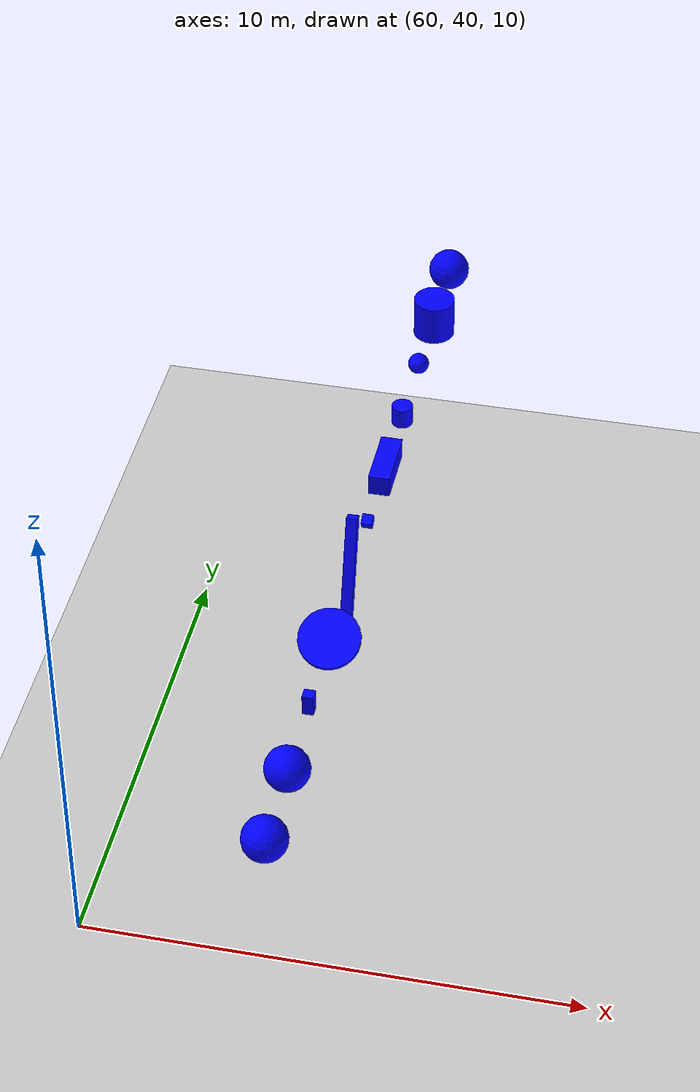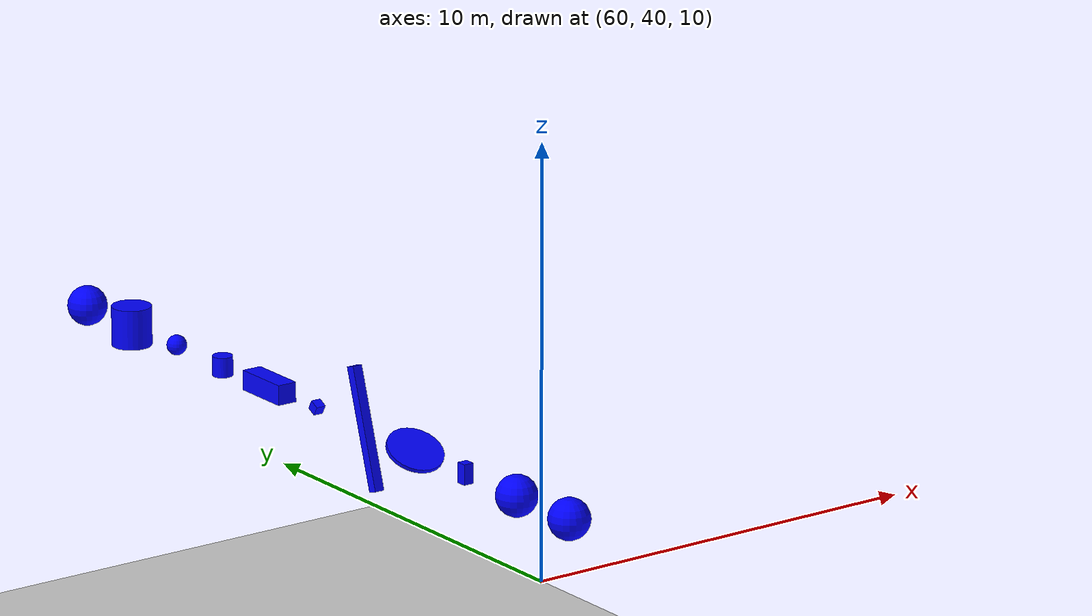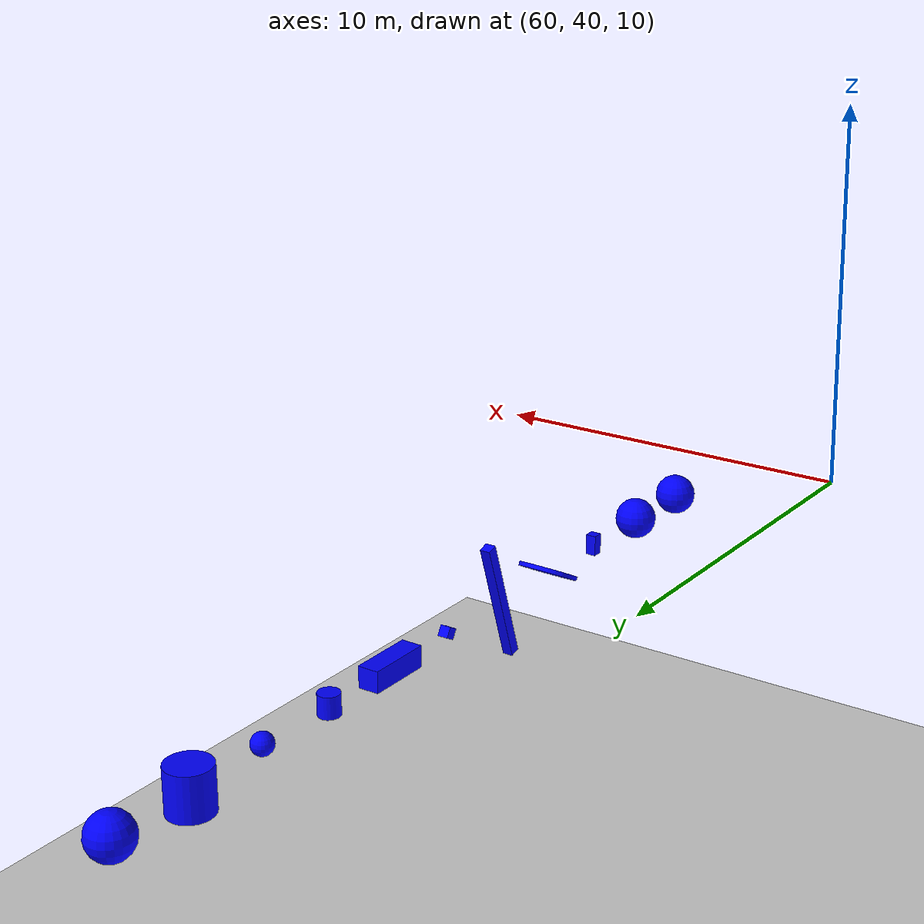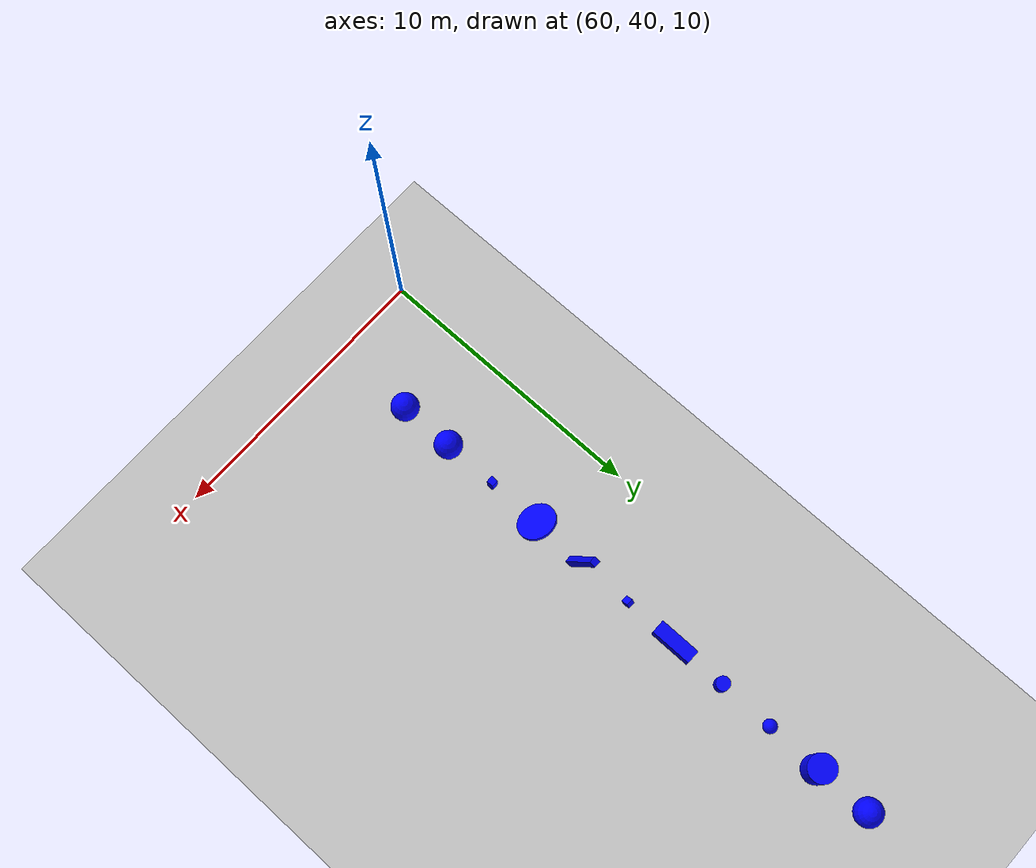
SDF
<sdf version="1.5">
 <world name="default">
  <include><uri>model://ground_plane</uri></include>
  <include><uri>model://sun</uri></include>
  <light type="spot" name="spot_0">
   <pose>61.0 63.0 12.8 0 0 0</pose>
   <diffuse>0.8 0.8 0.8 1</diffuse>
   <specular>0.2 0.2 0.2 1</specular>
   <attenuation>
    <range>10</range>
    <constant>0.05</constant>
    <linear>0.01</linear>
    <quadratic>0.1</quadratic>
   </attenuation>
   <spot><inner_angle>0.1</inner_angle><outer_angle>0.5</outer_angle><falloff>1.2</falloff></spot>
   <direction>1 0 -1</direction>
  </light>
  <light type="spot" name="spot_1">
   <pose>61.0 61.0 12.8 0 0 0</pose>
   <diffuse>0.8 0.8 0.8 1</diffuse>
   <specular>0.2 0.2 0.2 1</specular>
   <attenuation>
    <range>10</range>
    <constant>0.05</constant>
    <linear>0.01</linear>
    <quadratic>0.1</quadratic>
   </attenuation>
   <spot><inner_angle>0.1</inner_angle><outer_angle>0.5</outer_angle><falloff>1.2</falloff></spot>
   <direction>1 0 -1</direction>
  </light>
  <light type="spot" name="spot_2">
   <pose>61.0 59.0 12.8 0 0 0</pose>
   <diffuse>0.8 0.8 0.8 1</diffuse>
   <specular>0.2 0.2 0.2 1</specular>
   <attenuation>
    <range>10</range>
    <constant>0.05</constant>
    <linear>0.01</linear>
    <quadratic>0.1</quadratic>
   </attenuation>
   <spot><inner_angle>0.1</inner_angle><outer_angle>0.5</outer_angle><falloff>1.2</falloff></spot>
   <direction>1 0 -1</direction>
  </light>
  <light type="spot" name="spot_3">
   <pose>61.0 57.0 12.8 0 0 0</pose>
   <diffuse>0.8 0.8 0.8 1</diffuse>
   <specular>0.2 0.2 0.2 1</specular>
   <attenuation>
    <range>10</range>
    <constant>0.05</constant>
    <linear>0.01</linear>
    <quadratic>0.1</quadratic>
   </attenuation>
   <spot><inner_angle>0.1</inner_angle><outer_angle>0.5</outer_angle><falloff>1.2</falloff></spot>
   <direction>1 0 -1</direction>
  </light>
  <light type="spot" name="spot_4">
   <pose>61.0 55.0 12.8 0 0 0</pose>
   <diffuse>0.8 0.8 0.8 1</diffuse>
   <specular>0.2 0.2 0.2 1</specular>
   <attenuation>
    <range>10</range>
    <constant>0.05</constant>
    <linear>0.01</linear>
    <quadratic>0.1</quadratic>
   </attenuation>
   <spot><inner_angle>0.1</inner_angle><outer_angle>0.5</outer_angle><falloff>1.2</falloff></spot>
   <direction>1 0 -1</direction>
  </light>
  <light type="spot" name="spot_5">
   <pose>61.0 53.0 12.8 0 0 0</pose>
   <diffuse>0.8 0.8 0.8 1</diffuse>
   <specular>0.2 0.2 0.2 1</specular>
   <attenuation>
    <range>10</range>
    <constant>0.05</constant>
    <linear>0.01</linear>
    <quadratic>0.1</quadratic>
   </attenuation>
   <spot><inner_angle>0.1</inner_angle><outer_angle>0.5</outer_angle><falloff>1.2</falloff></spot>
   <direction>1 0 -1</direction>
  </light>
  <light type="spot" name="spot_6">
   <pose>61.0 51.0 12.8 0 0 0</pose>
   <diffuse>0.8 0.8 0.8 1</diffuse>
   <specular>0.2 0.2 0.2 1</specular>
   <attenuation>
    <range>10</range>
    <constant>0.05</constant>
    <linear>0.01</linear>
    <quadratic>0.1</quadratic>
   </attenuation>
   <spot><inner_angle>0.1</inner_angle><outer_angle>0.5</outer_angle><falloff>1.2</falloff></spot>
   <direction>1 0 -1</direction>
  </light>
  <light type="spot" name="spot_7">
   <pose>61.0 49.0 12.8 0 0 0</pose>
   <diffuse>0.8 0.8 0.8 1</diffuse>
   <specular>0.2 0.2 0.2 1</specular>
   <attenuation>
    <range>10</range>
    <constant>0.05</constant>
    <linear>0.01</linear>
    <quadratic>0.1</quadratic>
   </attenuation>
   <spot><inner_angle>0.1</inner_angle><outer_angle>0.5</outer_angle><falloff>1.2</falloff></spot>
   <direction>1 0 -1</direction>
  </light>
  <light type="spot" name="spot_8">
   <pose>61.0 47.0 12.8 0 0 0</pose>
   <diffuse>0.8 0.8 0.8 1</diffuse>
   <specular>0.2 0.2 0.2 1</specular>
   <attenuation>
    <range>10</range>
    <constant>0.05</constant>
    <linear>0.01</linear>
    <quadratic>0.1</quadratic>
   </attenuation>
   <spot><inner_angle>0.1</inner_angle><outer_angle>0.5</outer_angle><falloff>1.2</falloff></spot>
   <direction>1 0 -1</direction>
  </light>
  <light type="spot" name="spot_9">
   <pose>61.0 45.0 12.8 0 0 0</pose>
   <diffuse>0.8 0.8 0.8 1</diffuse>
   <specular>0.2 0.2 0.2 1</specular>
   <attenuation>
    <range>10</range>
    <constant>0.05</constant>
    <linear>0.01</linear>
    <quadratic>0.1</quadratic>
   </attenuation>
   <spot><inner_angle>0.1</inner_angle><outer_angle>0.5</outer_angle><falloff>1.2</falloff></spot>
   <direction>1 0 -1</direction>
  </light>
  <light type="spot" name="spot_10">
   <pose>61.0 43.0 12.8 0 0 0</pose>
   <diffuse>0.8 0.8 0.8 1</diffuse>
   <specular>0.2 0.2 0.2 1</specular>
   <attenuation>
    <range>10</range>
    <constant>0.05</constant>
    <linear>0.01</linear>
    <quadratic>0.1</quadratic>
   </attenuation>
   <spot><inner_angle>0.1</inner_angle><outer_angle>0.5</outer_angle><falloff>1.2</falloff></spot>
   <direction>1 0 -1</direction>
  </light>
  <model name="sphere">
   <static>true</static>
   <pose>63 63.0 10 0 0 0</pose>
   <link name="link">
    <visual name="visual">
     <geometry><sphere><radius>0.5</radius></sphere></geometry>
     <material><ambient>0 0 1 1</ambient><diffuse>0 0 1 1</diffuse></material>
    </visual>
   </link>
  </model>
  <model name="sphere_1">
   <static>true</static>
   <pose>63 61.0 10 0 0 0</pose>
   <link name="link">
    <visual name="visual">
     <geometry><cylinder><radius>0.5</radius><length>1.0</length></cylinder></geometry>
     <material><ambient>0 0 1 1</ambient><diffuse>0 0 1 1</diffuse></material>
    </visual>
   </link>
  </model>
  <model name="sphere_2">
   <static>true</static>
   <pose>63 59.0 10 0 0 0</pose>
   <link name="link">
    <visual name="visual">
     <geometry><sphere><radius>0.25</radius></sphere></geometry>
     <material><ambient>0 0 1 1</ambient><diffuse>0 0 1 1</diffuse></material>
    </visual>
   </link>
  </model>
  <model name="sphere_3">
   <static>true</static>
   <pose>63 57.0 10 0 0 0</pose>
   <link name="link">
    <visual name="visual">
     <geometry><cylinder><radius>0.25</radius><length>0.5</length></cylinder></geometry>
     <material><ambient>0 0 1 1</ambient><diffuse>0 0 1 1</diffuse></material>
    </visual>
   </link>
  </model>
  <model name="sphere_4">
   <static>true</static>
   <pose>63 55.0 10 0 0 0</pose>
   <link name="link">
    <visual name="visual">
     <geometry><box><size>0.5 1.5 0.5</size></box></geometry>
     <material><ambient>0 0 1 1</ambient><diffuse>0 0 1 1</diffuse></material>
    </visual>
   </link>
  </model>
  <model name="sphere_5">
   <static>true</static>
   <pose>63 53.0 10 0.5 0 0</pose>
   <link name="link">
    <visual name="visual">
     <geometry><box><size>0.25 0.25 0.25</size></box></geometry>
     <material><ambient>0 0 1 1</ambient><diffuse>0 0 1 1</diffuse></material>
    </visual>
   </link>
  </model>
  <model name="sphere_6">
   <static>true</static>
   <pose>63 51.0 10 -0.3 0 0</pose>
   <link name="link">
    <visual name="visual">
     <geometry><box><size>0.25 0.25 3.0</size></box></geometry>
     <material><ambient>0 0 1 1</ambient><diffuse>0 0 1 1</diffuse></material>
    </visual>
   </link>
  </model>
  <model name="sphere_7">
   <static>true</static>
   <pose>63 49.0 10 0.5 0 0</pose>
   <link name="link">
    <visual name="visual">
     <geometry><cylinder><radius>0.7</radius><length>0.1</length></cylinder></geometry>
     <material><ambient>0 0 1 1</ambient><diffuse>0 0 1 1</diffuse></material>
    </visual>
   </link>
  </model>
  <model name="sphere_8">
   <static>true</static>
   <pose>63 47.0 10 0 0 0</pose>
   <link name="link">
    <visual name="visual">
     <geometry><box><size>0.25 0.25 0.5</size></box></geometry>
     <material><ambient>0 0 1 1</ambient><diffuse>0 0 1 1</diffuse></material>
    </visual>
   </link>
  </model>
  <model name="sphere_9">
   <static>true</static>
   <pose>63 45.0 10 0 0 0</pose>
   <link name="link">
    <collision name="collision"><geometry><sphere><radius>0.5</radius></sphere></geometry></collision>
    <visual name="visual">
     <geometry><sphere><radius>0.5</radius></sphere></geometry>
     <material><ambient>0 0 1 1</ambient><diffuse>0 0 1 1</diffuse></material>
    </visual>
   </link>
  </model>
  <model name="sphere_10">
   <static>true</static>
   <pose>63 43.0 10 0 0 0</pose>
   <link name="link">
    <collision name="collision"><geometry><sphere><radius>0.5</radius></sphere></geometry></collision>
    <visual name="visual">
     <geometry><sphere><radius>0.5</radius></sphere></geometry>
     <material><ambient>0 0 1 1</ambient><diffuse>0 0 1 1</diffuse></material>
    </visual>
   </link>
  </model>
 </world>
</sdf>
